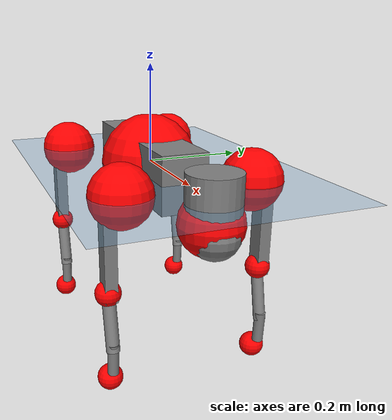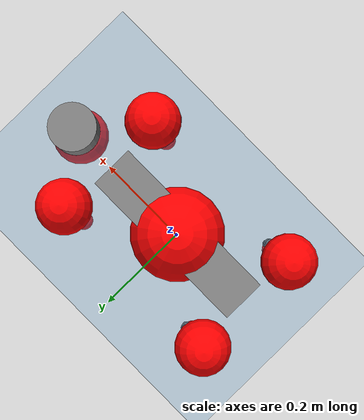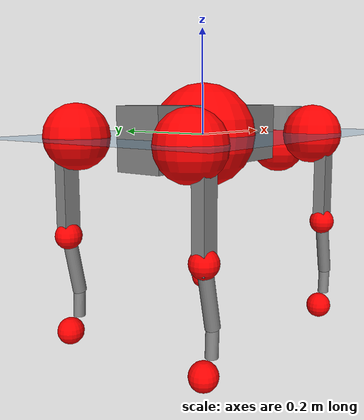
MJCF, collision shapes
<mujoco model="go2">
  <compiler angle="radian" assetdir="assets" balanceinertia="true" inertiafromgeom="false"/>

  <option timestep="0.005" density="1.2" viscosity="2e-05"/>

  <size nkey="1"/>

  <visual>
    <quality shadowsize="8192"/>
    <map shadowclip="0.5"/>
  </visual>

  <default>
    <default class="/">
      <geom contype="0" conaffinity="0" group="1" solref="-1000 -80"/>
      <site size="0.01 0.005 0.005" group="5"/>
      <general forcelimited="true" biastype="affine" gainprm="20" biasprm="0 -20 -0.5"/>
      <default class="go2">
        <joint armature="0.01" damping="0.01" frictionloss="0.2"/>
        <geom condim="1" margin="0.001"/>
        <default class="visual">
          <geom type="mesh" group="2"/>
        </default>
        <default class="collision">
          <geom group="3"/>
          <default class="foot">
            <geom size="0.022 0 0" condim="6" priority="1" friction="0.8 0.02 0.01" solimp="0.015 1 0.022"/>
          </default>
        </default>
        <default class="reward_collision_sphere">
          <geom group="5" rgba="1 0 0 1"/>
        </default>
      </default>
    </default>
  </default>

  <asset>
    <texture type="skybox" colorspace="auto" name="//unnamed_texture_0" builtin="gradient" rgb1="0.95 0.95 0.95" rgb2="0.95 0.95 0.95" width="100" height="600"/>
    <texture type="2d" colorspace="auto" name="texplane" builtin="checker" rgb1="0.345 0.575 0.748" rgb2="0.345 0.575 0.748" markrgb="1 1 1" width="512" height="512"/>
    <material name="MatPlane" class="/" texture="texplane" texuniform="true" texrepeat="2 2" specular="0.9"/>
    <material name="metal" class="/" rgba="0.9 0.95 0.95 1"/>
    <material name="black" class="/" rgba="0 0 0 1"/>
    <material name="white" class="/"/>
    <material name="gray" class="/" rgba="0.671705 0.692426 0.77427 1"/>
    <mesh name="base_0" class="/" file="base_0.obj"/>
    <mesh name="base_1" class="/" file="base_1.obj"/>
    <mesh name="base_2" class="/" file="base_2.obj"/>
    <mesh name="base_3" class="/" file="base_3.obj"/>
    <mesh name="base_4" class="/" file="base_4.obj"/>
    <mesh name="hip_0" class="/" file="hip_0.obj"/>
    <mesh name="hip_1" class="/" file="hip_1.obj"/>
    <mesh name="thigh_0" class="/" file="thigh_0.obj"/>
    <mesh name="thigh_1" class="/" file="thigh_1.obj"/>
    <mesh name="thigh_mirror_0" class="/" file="thigh_mirror_0.obj"/>
    <mesh name="thigh_mirror_1" class="/" file="thigh_mirror_1.obj"/>
    <mesh name="calf_0" class="/" file="calf_0.obj"/>
    <mesh name="calf_1" class="/" file="calf_1.obj"/>
    <mesh name="calf_mirror_0" class="/" file="calf_mirror_0.obj"/>
    <mesh name="calf_mirror_1" class="/" file="calf_mirror_1.obj"/>
    <mesh name="foot" class="/" file="foot.obj"/>
  </asset>

  <worldbody>
    <geom name="floor" class="/" size="100 100 0.125" type="plane" group="0" material="MatPlane"/>
    <light name="toplight_shadow" class="/" pos="0 0 5" dir="0.0990148 0.0990148 -0.990148" type="directional" ambient="0.04 0.04 0.04" diffuse="0.55 0.55 0.55" specular="0.12 0.12 0.12"/>
    <light name="toplight_fill" class="/" pos="0 0 5" dir="0.0990148 0.0990148 -0.990148" type="directional" castshadow="false" ambient="0.04 0.04 0.04" diffuse="0.3 0.3 0.3" specular="0.08 0.08 0.08"/>
    <body name="trunk" childclass="go2" pos="-0.000263119 -0.00279135 -0.000985772" quat="1 -8.73481e-07 -5.11628e-06 8.88468e-07">
      <inertial pos="0.0231101 -0.00283253 -0.00440328" quat="-0.00549835 0.711846 -0.000790834 0.702313" mass="6.79923" diaginertia="0.136043 0.145334 0.0110816"/>
      <joint name="//unnamed_joint_0" type="free" armature="0" damping="0" frictionloss="0"/>
      <geom name="//unnamed_geom_1" class="visual" material="black" mesh="base_0"/>
      <geom name="//unnamed_geom_2" class="visual" material="black" mesh="base_1"/>
      <geom name="//unnamed_geom_3" class="visual" material="black" mesh="base_2"/>
      <geom name="//unnamed_geom_4" class="visual" material="white" mesh="base_3"/>
      <geom name="//unnamed_geom_5" class="visual" material="gray" mesh="base_4"/>
      <geom name="trunk_1" class="collision" size="0.187957 0.0467145 0.0569567" type="box"/>
      <geom name="trunk_2" class="collision" size="0.049962 0.0449658" pos="0.30103 0 0.00854338" type="cylinder"/>
      <geom name="trunk_3" class="collision" size="0.0469643" pos="0.30948 0 -0.0512603"/>
      <geom name="//unnamed_geom_9" class="reward_collision_sphere" size="0.099924"/>
      <geom name="//unnamed_geom_10" class="reward_collision_sphere" size="0.0599544" pos="0.295749 0 -0.0384452"/>
      <site name="imu" pos="-0.0129004 0.0127855 0.0221898" size="0.0099924"/>
      <camera name="track" pos="0 -2.17427 0" quat="0.707107 0.707107 0 0" mode="trackcom"/>
      <camera name="ego_camera" pos="0.329548 0 0.0384452" quat="-0.5 -0.5 0.5 0.5"/>
      <body name="FL_hip" pos="0.20661 0.051776 0.00187949" quat="0.999999 0.00116688 0.000128711 0.000199202">
        <inertial pos="-0.00477231 0.00216201 0.00219118" quat="0.500647 0.500376 0.504005 0.494929" mass="0.651389" diaginertia="0.00116099 0.000865545 0.000217529"/>
        <joint name="FL_hip_joint" pos="0 0 0" axis="0.999969 -0.00705305 -0.00351005" stiffness="0.0108203" range="-1.02639 1.09554" armature="0.0101238" damping="0" frictionloss="0.228061"/>
        <geom name="//unnamed_geom_11" class="visual" material="metal" mesh="hip_0"/>
        <geom name="//unnamed_geom_12" class="visual" material="gray" mesh="hip_1"/>
        <geom name="//unnamed_geom_13" class="collision" size="0.0459651 0.0199848" pos="0 0.086971 0" quat="0.707107 0.707107 0 0" type="cylinder"/>
        <geom name="//unnamed_geom_14" class="reward_collision_sphere" size="0.0599544" pos="0 0.0760996 0"/>
        <body name="FL_thigh" pos="-0.000751705 0.105063 0.000297689" quat="0.999999 -0.000712172 -0.00142485 8.0815e-05">
          <inertial pos="-0.00111718 -0.0215075 -0.0287129" quat="0.833658 0.0740982 -0.017806 0.546998" mass="1.14791" diaginertia="0.00767841 0.00879073 0.000394511"/>
          <joint name="FL_thigh_joint" pos="0 0 0" axis="-0.0173766 0.999843 -0.0034784" stiffness="0.0042054" range="-1.52429 3.53144" armature="0.0113368" damping="0.000390793" frictionloss="0.212916"/>
          <geom name="//unnamed_geom_15" class="visual" material="metal" mesh="thigh_0"/>
          <geom name="//unnamed_geom_16" class="visual" material="gray" mesh="thigh_1"/>
          <geom name="//unnamed_geom_17" class="collision" size="0.106419 0.0122407 0.0169871" pos="0 0 -0.090987" quat="0.707107 0 0.707107 0" type="box"/>
          <body name="FL_calf" pos="-0.000679224 -0.00227783 -0.18352" quat="0.999999 -0.00108936 -9.55962e-05 -0.00061506">
            <inertial pos="0.00946798 -0.000831267 -0.121949" quat="0.710346 0.00135291 -0.00358482 0.703842" mass="0.245003" diaginertia="0.00189826 0.00228585 2.37471e-05"/>
            <joint name="FL_calf_joint" pos="0 0 0" axis="0.00270702 0.999963 0.00815088" stiffness="5.65659e-05" range="-2.75474 -0.827001" armature="0.00860662" damping="0.00396792" frictionloss="0.203117"/>
            <geom name="//unnamed_geom_18" class="visual" material="gray" mesh="calf_0"/>
            <geom name="//unnamed_geom_19" class="visual" material="black" mesh="calf_1"/>
            <geom name="FL_calf0" class="collision" size="0.0119909 0.0599544" pos="0.00844996 0 -0.0512603" quat="0.994493 0 -0.104807 0" type="cylinder"/>
            <geom name="//unnamed_geom_21" class="collision" size="0.0109916 0.0324753" pos="0.0211249 0 -0.126442" quat="0.999688 0 0.0249974 0" type="cylinder"/>
            <geom name="//unnamed_geom_22" class="visual" pos="0 0 -0.181974" quat="1 0 0 0" material="black" mesh="foot"/>
            <geom name="FL_foot" class="foot" size="0.0159784" pos="-0.00211249 0 -0.181974"/>
            <geom name="//unnamed_geom_24" class="reward_collision_sphere" size="0.024981"/>
            <geom name="//unnamed_geom_25" class="reward_collision_sphere" size="0.024981" pos="-0.00211249 0 -0.181974"/>
            <site name="FL_foot" class="foot" pos="-0.00211249 0 -0.181974" size="0.0099924"/>
          </body>
        </body>
      </body>
      <body name="FR_hip" pos="0.204401 -0.053262 -0.00247337" quat="1 0.000101765 -6.27448e-05 4.98427e-05">
        <inertial pos="-0.00631477 -0.00285035 0.000136265" quat="0.497237 0.505371 0.501858 0.495474" mass="0.647856" diaginertia="0.00113874 0.000881778 0.000223286"/>
        <joint name="FR_hip_joint" pos="0 0 0" axis="0.999904 -0.0138444 -0.00100473" range="-1.05089 1.0636" armature="0.0102558" damping="0.0111522" frictionloss="0.211454"/>
        <geom name="//unnamed_geom_26" class="visual" pos="0 2.02805e-09 8.69873e-08" quat="4.63268e-05 1 0 0" material="metal" mesh="hip_0"/>
        <geom name="//unnamed_geom_27" class="visual" pos="0 3.28771e-09 -2.15153e-07" quat="4.63268e-05 1 0 0" material="gray" mesh="hip_1"/>
        <geom name="//unnamed_geom_28" class="collision" size="0.0459651 0.0199848" pos="0 -0.086971 0" quat="0.707107 0.707107 0 0" type="cylinder"/>
        <geom name="//unnamed_geom_29" class="reward_collision_sphere" size="0.0599544" pos="0 -0.0760996 0"/>
        <body name="FR_thigh" pos="0.0019599 -0.102739 0.00173621" quat="0.999999 0.00115563 1.06943e-05 0.000154477">
          <inertial pos="-0.00480048 0.0227832 -0.0272615" quat="0.556357 -0.0299018 0.0912357 0.825378" mass="1.22964" diaginertia="0.00799005 0.0091888 0.000405749"/>
          <joint name="FR_thigh_joint" pos="0 0 0" axis="-0.000224507 -0.999986 -0.00529705" range="-3.52804 1.56773" armature="0.00946812" damping="0.0152996" frictionloss="0.199334"/>
          <geom name="//unnamed_geom_30" class="visual" material="metal" mesh="thigh_mirror_0"/>
          <geom name="//unnamed_geom_31" class="visual" material="gray" mesh="thigh_mirror_1"/>
          <geom name="//unnamed_geom_32" class="collision" size="0.106419 0.0122407 0.0169871" pos="0 0 -0.090987" quat="0.707107 0 0.707107 0" type="box"/>
          <body name="FR_calf" pos="-0.00237137 -0.00160398 -0.184106" quat="0.999999 0.000809905 0.000945667 0.000130863">
            <inertial pos="0.00837294 0.00091049 -0.118353" quat="0.704418 0.00428614 -0.00865884 0.70972" mass="0.237889" diaginertia="0.00195284 0.00221799 2.44255e-05"/>
            <joint name="FR_calf_joint" pos="0 0 0" axis="-0.00410317 -0.999969 0.0067123" range="0.819157 2.71498" armature="0.010958" damping="0.0194007" frictionloss="0.174326"/>
            <geom name="//unnamed_geom_33" class="visual" material="gray" mesh="calf_mirror_0"/>
            <geom name="//unnamed_geom_34" class="visual" material="black" mesh="calf_mirror_1"/>
            <geom name="FR_calf0" class="collision" size="0.0129901 0.0599544" pos="0.0105625 0 -0.0512603" quat="0.995004 0 -0.0998334 0" type="cylinder"/>
            <geom name="//unnamed_geom_36" class="collision" size="0.0109916 0.0324753" pos="0.0211249 0 -0.126442" quat="0.999688 0 0.0249974 0" type="cylinder"/>
            <geom name="//unnamed_geom_37" class="visual" pos="0 0 -0.181974" quat="1 0 0 0" material="black" mesh="foot"/>
            <geom name="FR_foot" class="foot" size="0.0201679" pos="-0.00211249 0 -0.181974"/>
            <geom name="//unnamed_geom_39" class="reward_collision_sphere" size="0.024981"/>
            <geom name="//unnamed_geom_40" class="reward_collision_sphere" size="0.024981" pos="-0.00211249 0 -0.181974"/>
            <site name="FR_foot" class="foot" pos="-0.00211249 0 -0.181974" size="0.0099924"/>
          </body>
        </body>
      </body>
      <body name="RL_hip" pos="-0.204982 0.0516432 0.00195704" quat="1 0.0002413 5.25855e-05 0.000636564">
        <inertial pos="0.00581578 -0.000372715 0.00254157" quat="0.506751 0.498938 0.494943 0.499296" mass="0.695777" diaginertia="0.00118554 0.000923528 0.000221983"/>
        <joint name="RL_hip_joint" pos="0 0 0" axis="-0.999665 0.0256278 0.00370839" range="-1.05029 1.00711" armature="0.0099847" damping="0.00958375" frictionloss="0.194426"/>
        <geom name="//unnamed_geom_41" class="visual" pos="-1.75893e-09 0 -3.44791e-07" quat="4.63268e-05 0 1 0" material="metal" mesh="hip_0"/>
        <geom name="//unnamed_geom_42" class="visual" pos="-2.85143e-09 0 -3.0578e-07" quat="4.63268e-05 0 1 0" material="gray" mesh="hip_1"/>
        <geom name="//unnamed_geom_43" class="collision" size="0.0459651 0.0199848" pos="0 0.086971 0" quat="0.707107 0.707107 0 0" type="cylinder"/>
        <geom name="//unnamed_geom_44" class="reward_collision_sphere" size="0.0599544" pos="0 0.0760996 0"/>
        <body name="RL_thigh" pos="-0.00240415 0.103677 -0.00107111" quat="1 0.000153851 4.5955e-05 -0.000124593">
          <inertial pos="-0.00397995 -0.0228816 -0.030066" quat="0.824214 0.0798002 -0.0138555 0.560456" mass="1.18673" diaginertia="0.00793225 0.00921243 0.000411651"/>
          <joint name="RL_thigh_joint" pos="0 0 0" axis="0.00621067 0.999981 -0.000394814" stiffness="0.00580266" range="-0.578487 4.59124" armature="0.00934155" damping="0" frictionloss="0.209809"/>
          <geom name="//unnamed_geom_45" class="visual" material="metal" mesh="thigh_0"/>
          <geom name="//unnamed_geom_46" class="visual" material="gray" mesh="thigh_1"/>
          <geom name="//unnamed_geom_47" class="collision" size="0.106419 0.0122407 0.0169871" pos="0 0 -0.090987" quat="0.707107 0 0.707107 0" type="box"/>
          <body name="RL_calf" pos="-0.0020117 -0.00172544 -0.181514" quat="1 -3.89464e-05 -4.03787e-05 9.68361e-05">
            <inertial pos="0.00752975 -6.55119e-05 -0.119737" quat="0.712173 -1.03897e-05 -0.00433536 0.70199" mass="0.257241" diaginertia="0.00208739 0.00231265 2.48968e-05"/>
            <joint name="RL_calf_joint" pos="0 0 0" axis="-0.00489057 0.999899 -0.0133666" stiffness="0.00295452" range="-2.69041 -0.892934" armature="0.0100389" damping="0" frictionloss="0.195308"/>
            <geom name="//unnamed_geom_48" class="visual" material="gray" mesh="calf_0"/>
            <geom name="//unnamed_geom_49" class="visual" material="black" mesh="calf_1"/>
            <geom name="RL_calf0" class="collision" size="0.0129901 0.0599544" pos="0.0105625 0 -0.0512603" quat="0.995004 0 -0.0998334 0" type="cylinder"/>
            <geom name="//unnamed_geom_51" class="collision" size="0.0109916 0.0324753" pos="0.0211249 0 -0.126442" quat="0.999688 0 0.0249974 0" type="cylinder"/>
            <geom name="//unnamed_geom_52" class="visual" pos="0 0 -0.181974" quat="1 0 0 0" material="black" mesh="foot"/>
            <geom name="RL_foot" class="foot" size="0.0206543" pos="-0.00211249 0 -0.181974"/>
            <geom name="//unnamed_geom_54" class="reward_collision_sphere" size="0.024981"/>
            <geom name="//unnamed_geom_55" class="reward_collision_sphere" size="0.024981" pos="-0.00211249 0 -0.181974"/>
            <site name="RL_foot" class="foot" pos="-0.00211249 0 -0.181974" size="0.0099924"/>
          </body>
        </body>
      </body>
      <body name="RR_hip" pos="-0.204571 -0.0498087 -0.00327121" quat="0.999999 0.000549374 0.0010245 -0.000103056">
        <inertial pos="0.00559941 0.000624897 -0.00303991" quat="0.499242 0.497016 0.498244 0.505456" mass="0.695137" diaginertia="0.00124191 0.00094992 0.000231532"/>
        <joint name="RR_hip_joint" pos="0 0 0" axis="-0.999959 -0.00891932 -0.00126646" stiffness="0.00802918" range="-1.02396 1.00298" armature="0.0098935" damping="0.00354791" frictionloss="0.189255"/>
        <geom name="//unnamed_geom_56" class="visual" pos="1.76e-09 2.02805e-09 -4.31778e-07" quat="2.14617e-09 4.63268e-05 4.63268e-05 -1" material="metal" mesh="hip_0"/>
        <geom name="//unnamed_geom_57" class="visual" pos="2.84879e-09 3.28771e-09 -9.06274e-08" quat="2.14617e-09 4.63268e-05 4.63268e-05 -1" material="gray" mesh="hip_1"/>
        <geom name="//unnamed_geom_58" class="collision" size="0.0459651 0.0199848" pos="0 -0.086971 0" quat="0.707107 0.707107 0 0" type="cylinder"/>
        <geom name="//unnamed_geom_59" class="reward_collision_sphere" size="0.0599544" pos="0 -0.0760996 0"/>
        <body name="RR_thigh" pos="0.000144458 -0.101234 0.00164575" quat="0.999999 -0.00123289 -0.000347858 0.00040068">
          <inertial pos="-0.00352848 0.0220255 -0.0253275" quat="0.550469 -0.0193618 0.0850016 0.830292" mass="1.10529" diaginertia="0.00747238 0.00857228 0.000387139"/>
          <joint name="RR_thigh_joint" pos="0 0 0" axis="0.000862614 -0.999997 -0.00221192" range="-4.55553 0.576435" armature="0.010263" damping="0.00952711" frictionloss="0.192779"/>
          <geom name="//unnamed_geom_60" class="visual" material="metal" mesh="thigh_mirror_0"/>
          <geom name="//unnamed_geom_61" class="visual" material="gray" mesh="thigh_mirror_1"/>
          <geom name="//unnamed_geom_62" class="collision" size="0.106419 0.0122407 0.0169871" pos="0 0 -0.090987" quat="0.707107 0 0.707107 0" type="box"/>
          <body name="RR_calf" pos="-0.000181267 0.000117594 -0.180889" quat="0.999999 -0.0008332 -0.00018002 -0.000612454">
            <inertial pos="0.00751751 0.00062512 -0.120864" quat="0.705434 -0.000782536 -0.00388939 0.708765" mass="0.244522" diaginertia="0.00202628 0.00222141 2.41998e-05"/>
            <joint name="RR_calf_joint" pos="0 0 0" axis="0.00332346 -0.999993 0.00142271" range="0.780997 2.76739" armature="0.00881031" damping="0.0125779" frictionloss="0.20508"/>
            <geom name="//unnamed_geom_63" class="visual" material="gray" mesh="calf_mirror_0"/>
            <geom name="//unnamed_geom_64" class="visual" material="black" mesh="calf_mirror_1"/>
            <geom name="RR_calf0" class="collision" size="0.0129901 0.0599544" pos="0.0105625 0 -0.0512603" quat="0.995004 0 -0.0998334 0" type="cylinder"/>
            <geom name="//unnamed_geom_66" class="collision" size="0.0109916 0.0324753" pos="0.0211249 0 -0.126442" quat="0.999688 0 0.0249974 0" type="cylinder"/>
            <geom name="//unnamed_geom_67" class="visual" pos="0 0 -0.181974" quat="1 0 0 0" material="black" mesh="foot"/>
            <geom name="RR_foot" class="foot" size="0.0197661" pos="-0.00211249 0 -0.181974"/>
            <geom name="//unnamed_geom_69" class="reward_collision_sphere" size="0.024981"/>
            <geom name="//unnamed_geom_70" class="reward_collision_sphere" size="0.024981" pos="-0.00211249 0 -0.181974"/>
            <site name="RR_foot" class="foot" pos="-0.00211249 0 -0.181974" size="0.0099924"/>
          </body>
        </body>
      </body>
    </body>
  </worldbody>

  <contact>
    <pair class="/" geom1="floor" geom2="FL_foot" name="//unnamed_contact_0"/>
    <pair class="/" geom1="floor" geom2="FR_foot" name="//unnamed_contact_1"/>
    <pair class="/" geom1="floor" geom2="RL_foot" name="//unnamed_contact_2"/>
    <pair class="/" geom1="floor" geom2="RR_foot" name="//unnamed_contact_3"/>
  </contact>

  <actuator>
    <general name="FL_hip" class="/" joint="FL_hip_joint" forcerange="-24.7817 24.7817" gainprm="21.0671" biasprm="0 -21.0671 -0.513621"/>
    <general name="FL_thigh" class="/" joint="FL_thigh_joint" forcerange="-21.2361 21.2361" gainprm="21.0671" biasprm="0 -21.0671 -0.513621"/>
    <general name="FL_calf" class="/" joint="FL_calf_joint" forcerange="-44.1909 44.1909" gainprm="21.0671" biasprm="0 -21.0671 -0.513621"/>
    <general name="FR_hip" class="/" joint="FR_hip_joint" forcerange="-25.4191 25.4191" gainprm="21.0671" biasprm="0 -21.0671 -0.513621"/>
    <general name="FR_thigh" class="/" joint="FR_thigh_joint" forcerange="-25.4012 25.4012" gainprm="21.0671" biasprm="0 -21.0671 -0.513621"/>
    <general name="FR_calf" class="/" joint="FR_calf_joint" forcerange="-49.8748 49.8748" gainprm="21.0671" biasprm="0 -21.0671 -0.513621"/>
    <general name="RL_hip" class="/" joint="RL_hip_joint" forcerange="-23.731 23.731" gainprm="21.0671" biasprm="0 -21.0671 -0.513621"/>
    <general name="RL_thigh" class="/" joint="RL_thigh_joint" forcerange="-22.8367 22.8367" gainprm="21.0671" biasprm="0 -21.0671 -0.513621"/>
    <general name="RL_calf" class="/" joint="RL_calf_joint" forcerange="-40.9417 40.9417" gainprm="21.0671" biasprm="0 -21.0671 -0.513621"/>
    <general name="RR_hip" class="/" joint="RR_hip_joint" forcerange="-22.2432 22.2432" gainprm="21.0671" biasprm="0 -21.0671 -0.513621"/>
    <general name="RR_thigh" class="/" joint="RR_thigh_joint" forcerange="-24.5776 24.5776" gainprm="21.0671" biasprm="0 -21.0671 -0.513621"/>
    <general name="RR_calf" class="/" joint="RR_calf_joint" forcerange="-46.3324 46.3324" gainprm="21.0671" biasprm="0 -21.0671 -0.513621"/>
  </actuator>

  <sensor>
    <gyro site="imu" name="imu_angular_velocity"/>
    <velocimeter site="imu" name="imu_linear_velocity"/>
    <framelinvel objtype="site" objname="FL_foot" name="FL_foot_global_linear_velocity"/>
    <framelinvel objtype="site" objname="FR_foot" name="FR_foot_global_linear_velocity"/>
    <framelinvel objtype="site" objname="RL_foot" name="RL_foot_global_linear_velocity"/>
    <framelinvel objtype="site" objname="RR_foot" name="RR_foot_global_linear_velocity"/>
  </sensor>

  <keyframe>
    <key name="home" qpos="0 0 0.325 1 0 0 0 0.1 0.8 -1.5 -0.1 -0.8 1.5 -0.1 0.8 -1.5 0.1 -0.8 1.5"/>
  </keyframe>
</mujoco>
